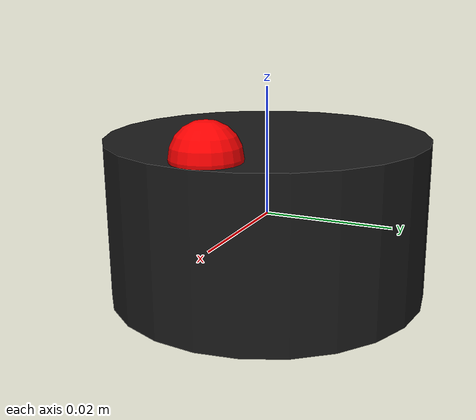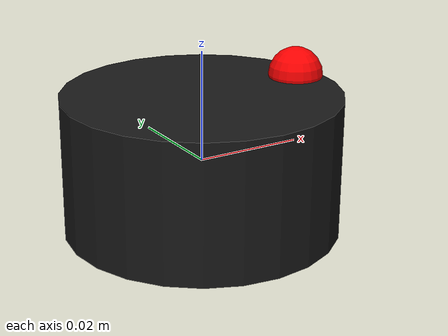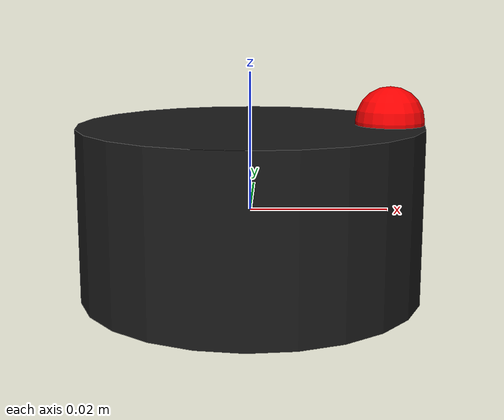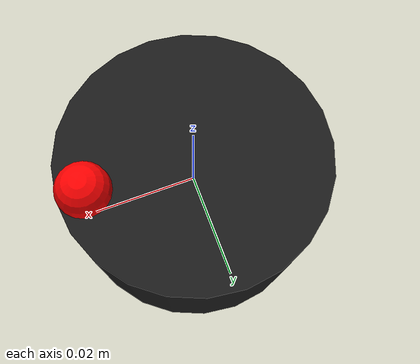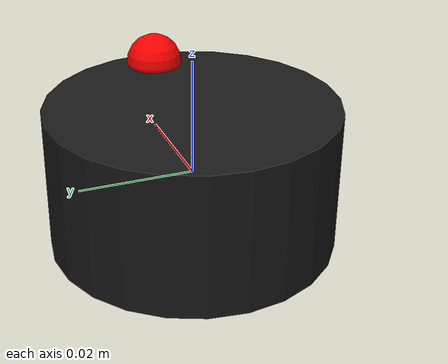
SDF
<?xml version="1.0" ?>
<sdf version="1.7">
  <model name="rotating_puck">

    <link name="base_fixed">
    </link>

    <link name="base_link">
      <pose>0 0 0 0 0 0</pose>
      <inertial>
        <mass>0.5</mass>
        <inertia>
          <ixx>0.00166</ixx>
          <ixy>0</ixy>
          <ixz>0</ixz>
          <iyy>0.00166</iyy>
          <iyz>0</iyz>
          <izz>0.0025</izz>
        </inertia>
      </inertial>

      <visual name="puck_visual">
        <geometry>
          <cylinder>
            <radius>0.025</radius>
            <length>0.025</length>
          </cylinder>
        </geometry>
        <material>
          <ambient>0.2 0.2 0.2 1</ambient>
          <diffuse>0.1 0.1 0.1 1</diffuse>
        </material>
      </visual>

      <visual name="tracking_dot">
        <pose>0.02 0 0.013 0 0 0</pose>
        <geometry>
          <sphere>
            <radius>0.005</radius>
          </sphere>
        </geometry>
        <material>
          <ambient>1 0 0 1</ambient>
          <diffuse>1 0 0 1</diffuse>
          <specular>1 1 1 1</specular>
        </material>
      </visual>

      <collision name="puck_collision">
        <geometry>
          <cylinder>
            <radius>0.025</radius>
            <length>0.025</length>
          </cylinder>
        </geometry>

        <drake:proximity_properties>
          <drake:rigid_hydroelastic/>
          <drake:mesh_resolution_hint>0.01</drake:mesh_resolution_hint>
        </drake:proximity_properties>
      </collision>
    </link>

    <joint name="puck_revolute_joint" type="revolute">
      <parent>base_fixed</parent>
      <child>base_link</child>
      <pose>0 0 0 0 0 0</pose>
      <axis>
        <xyz>0 0 1</xyz>

        <dynamics>
          <damping>0.1</damping>
          <friction>0.05</friction>
        </dynamics>
      </axis>
    </joint>

  </model>
</sdf>
